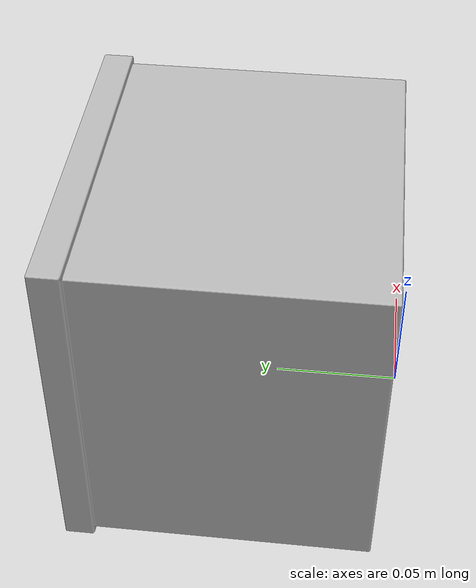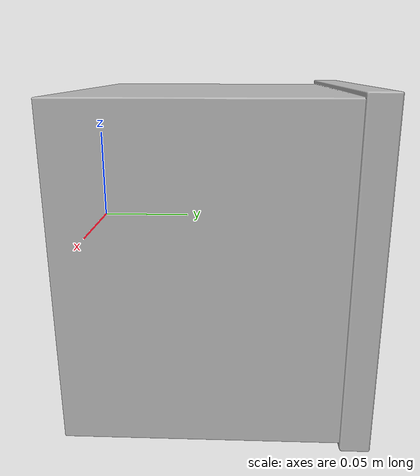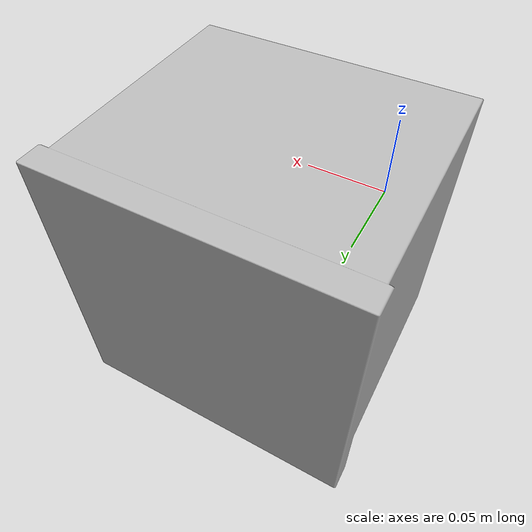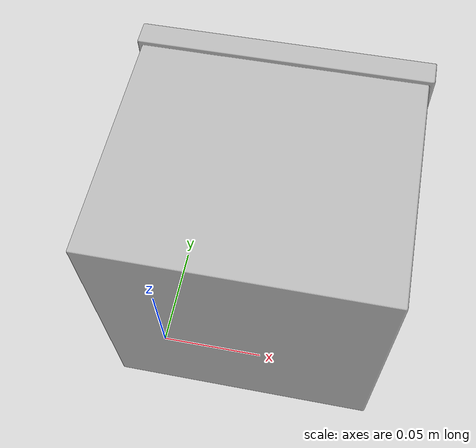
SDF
<?xml version="1.0"?>
<sdf version="1.6">
  <model name="box3_model">
    <static>true</static>

    <link name="link">
      <pose>0 0 0 0 0 0</pose>

      <!-- VISUAL (solo grafica) -->
      <visual name="visual">
        <geometry>
          <mesh>
            <uri>model://box3_model/meshes/colored_box.obj</uri>
            <scale>0.006 0.005 0.004</scale>
          </mesh>
        </geometry>
      </visual>

    </link>
  </model>
</sdf>
